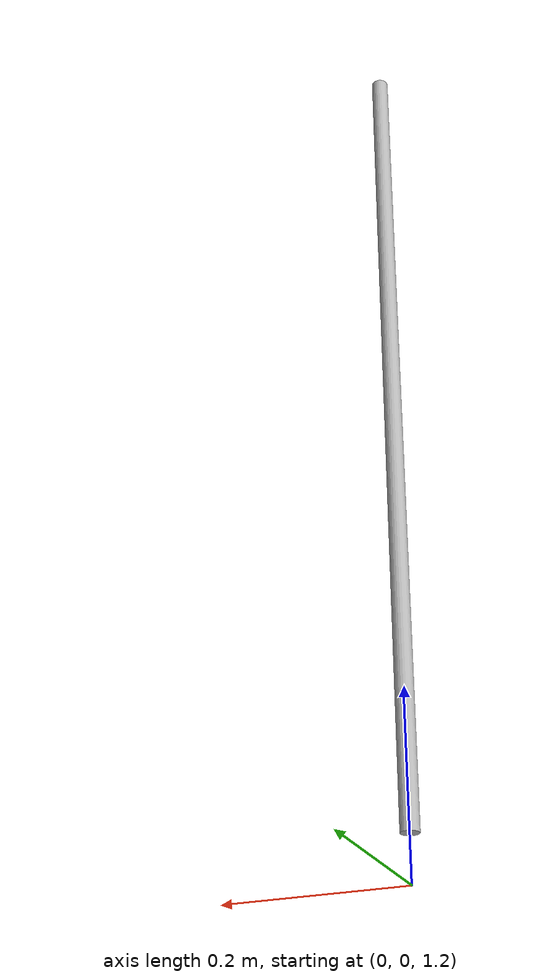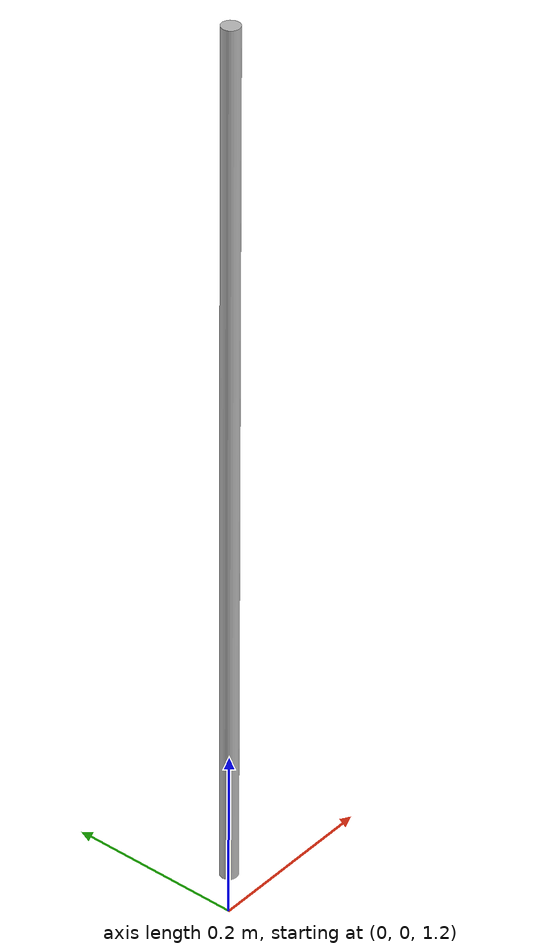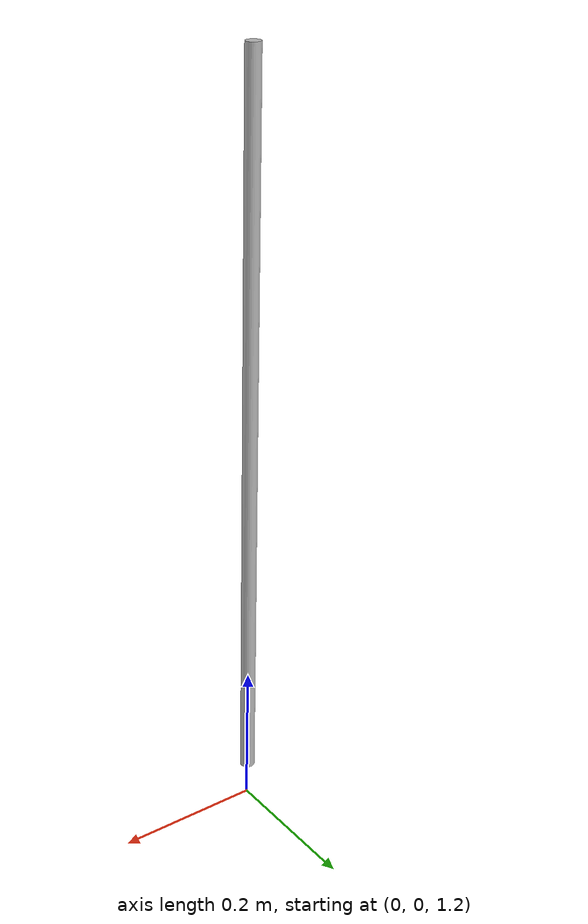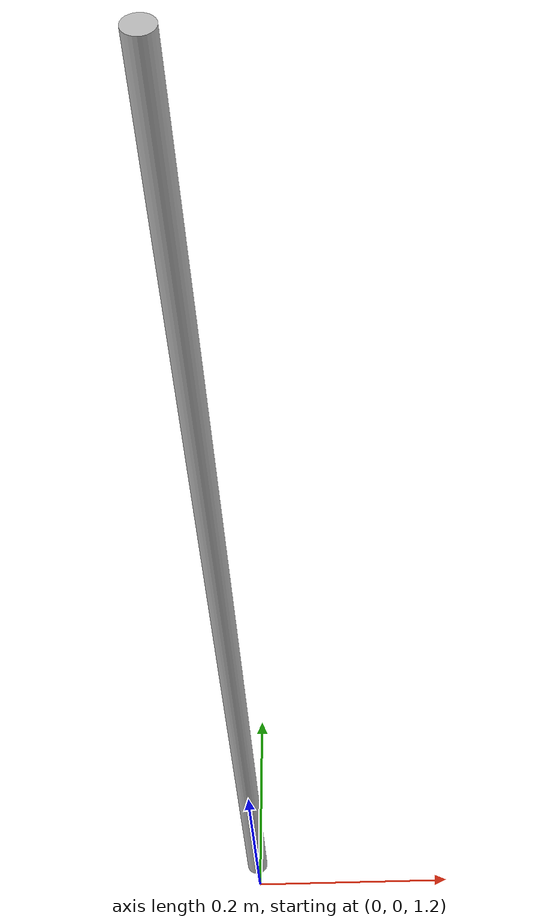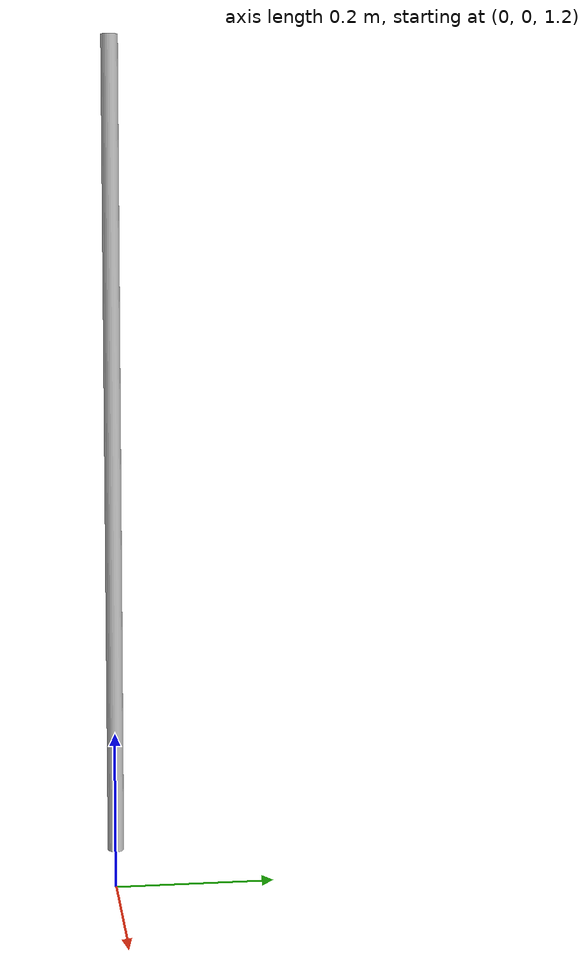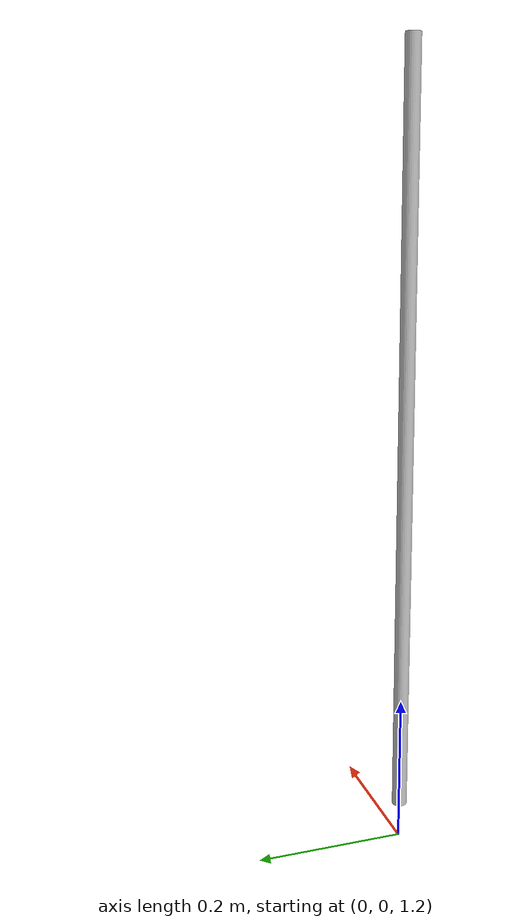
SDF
<?xml version="1.0" ?>
<sdf version='1.4'>
  <model name='pendulum'>
    <link name='pole'>
      <pose>0 0 1.75 0 0 0</pose>
      <inertial>
        <pose>0 0 0 0 0 0</pose>
        <mass>1</mass>
        <inertia>
          <ixx>0.33</ixx>
          <ixy>0</ixy>
          <ixz>0</ixz>
          <iyy>0.33</iyy>
          <iyz>0</iyz>
          <izz>0.00005</izz>
        </inertia>
      </inertial>
      <collision name='pendulum_collision'>
        <pose>0 0 0 0 0 0</pose>
        <geometry>
          <cylinder>
            <radius>0.01</radius>
	    <length>1</length>
          </cylinder>
        </geometry>
      </collision>
      <visual name='pendulum_visual'>
        <pose>0 0 0 0 0 0</pose>
        <geometry>
          <cylinder>
            <radius>0.01</radius>
	    <length>1</length>
          </cylinder>
        </geometry>
      </visual>
    </link>
  </model>
</sdf>
